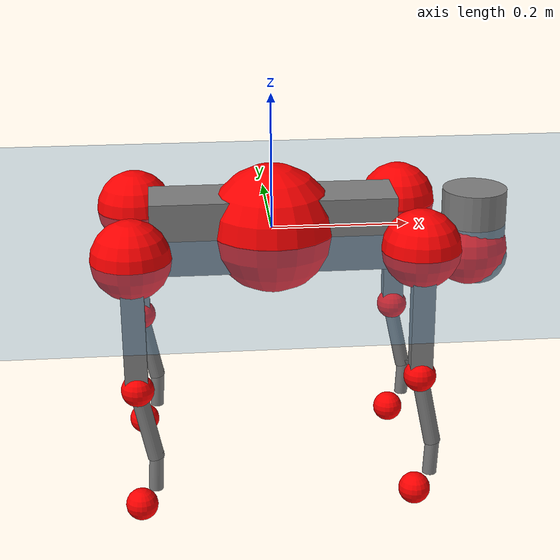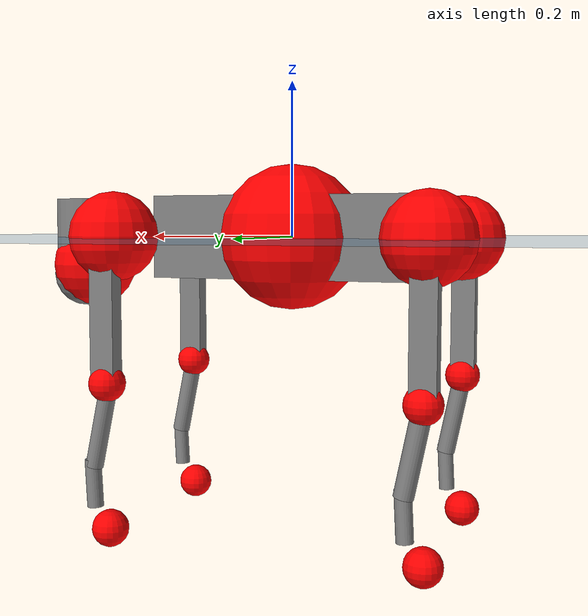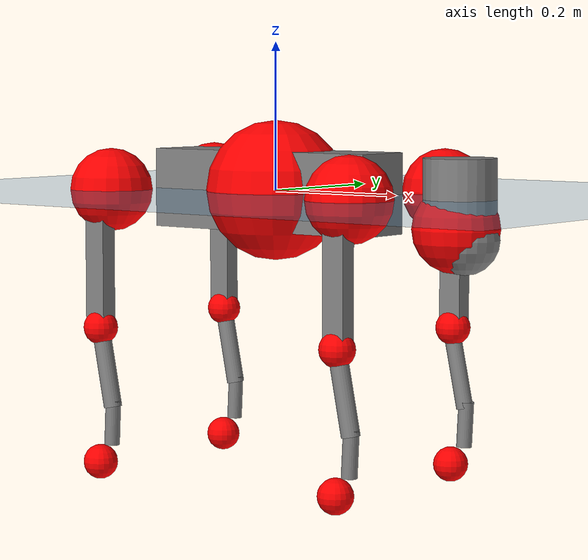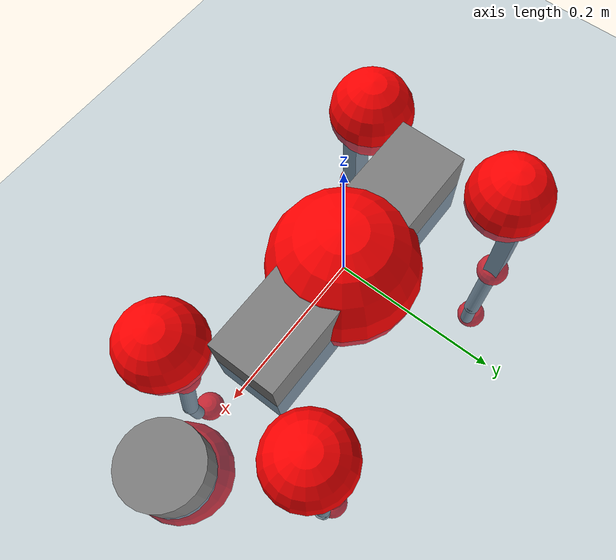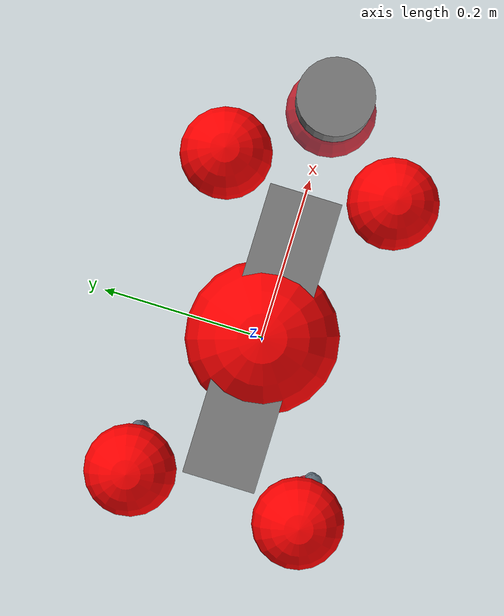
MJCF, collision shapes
<mujoco model="go2">
  <compiler angle="radian" assetdir="assets" balanceinertia="true" inertiafromgeom="false"/>

  <option timestep="0.005" density="1.2" viscosity="2e-05"/>

  <size nkey="1"/>

  <visual>
    <quality shadowsize="8192"/>
    <map shadowclip="0.5"/>
  </visual>

  <default>
    <default class="/">
      <geom contype="0" conaffinity="0" group="1" solref="-1000 -80"/>
      <site size="0.01 0.005 0.005" group="5"/>
      <general forcelimited="true" biastype="affine" gainprm="20" biasprm="0 -20 -0.5"/>
      <default class="go2">
        <joint armature="0.01" damping="0.01" frictionloss="0.2"/>
        <geom condim="1" margin="0.001"/>
        <default class="visual">
          <geom type="mesh" group="2"/>
        </default>
        <default class="collision">
          <geom group="3"/>
          <default class="foot">
            <geom size="0.022 0 0" condim="6" priority="1" friction="0.8 0.02 0.01" solimp="0.015 1 0.022"/>
          </default>
        </default>
        <default class="reward_collision_sphere">
          <geom group="5" rgba="1 0 0 1"/>
        </default>
      </default>
    </default>
  </default>

  <asset>
    <texture type="skybox" colorspace="auto" name="//unnamed_texture_0" builtin="gradient" rgb1="0.95 0.95 0.95" rgb2="0.95 0.95 0.95" width="100" height="600"/>
    <texture type="2d" colorspace="auto" name="texplane" builtin="checker" rgb1="0.345 0.575 0.748" rgb2="0.345 0.575 0.748" markrgb="1 1 1" width="512" height="512"/>
    <material name="MatPlane" class="/" texture="texplane" texuniform="true" texrepeat="2 2" specular="0.9"/>
    <material name="metal" class="/" rgba="0.9 0.95 0.95 1"/>
    <material name="black" class="/" rgba="0 0 0 1"/>
    <material name="white" class="/"/>
    <material name="gray" class="/" rgba="0.671705 0.692426 0.77427 1"/>
    <mesh name="base_0" class="/" file="base_0.obj"/>
    <mesh name="base_1" class="/" file="base_1.obj"/>
    <mesh name="base_2" class="/" file="base_2.obj"/>
    <mesh name="base_3" class="/" file="base_3.obj"/>
    <mesh name="base_4" class="/" file="base_4.obj"/>
    <mesh name="hip_0" class="/" file="hip_0.obj"/>
    <mesh name="hip_1" class="/" file="hip_1.obj"/>
    <mesh name="thigh_0" class="/" file="thigh_0.obj"/>
    <mesh name="thigh_1" class="/" file="thigh_1.obj"/>
    <mesh name="thigh_mirror_0" class="/" file="thigh_mirror_0.obj"/>
    <mesh name="thigh_mirror_1" class="/" file="thigh_mirror_1.obj"/>
    <mesh name="calf_0" class="/" file="calf_0.obj"/>
    <mesh name="calf_1" class="/" file="calf_1.obj"/>
    <mesh name="calf_mirror_0" class="/" file="calf_mirror_0.obj"/>
    <mesh name="calf_mirror_1" class="/" file="calf_mirror_1.obj"/>
    <mesh name="foot" class="/" file="foot.obj"/>
  </asset>

  <worldbody>
    <geom name="floor" class="/" size="100 100 0.125" type="plane" group="0" material="MatPlane"/>
    <light name="toplight_shadow" class="/" pos="0 0 5" dir="0.0990148 0.0990148 -0.990148" type="directional" ambient="0.04 0.04 0.04" diffuse="0.55 0.55 0.55" specular="0.12 0.12 0.12"/>
    <light name="toplight_fill" class="/" pos="0 0 5" dir="0.0990148 0.0990148 -0.990148" type="directional" castshadow="false" ambient="0.04 0.04 0.04" diffuse="0.3 0.3 0.3" specular="0.08 0.08 0.08"/>
    <body name="trunk" childclass="go2" pos="0.000344336 -0.000497253 0.000243769" quat="1 2.45086e-05 -0.000190823 -2.64921e-05">
      <inertial pos="0.0219328 -4.62631e-05 -0.00491762" quat="0.0034875 0.715066 -0.00226868 0.699044" mass="5.79793" diaginertia="0.135348 0.0628022 0.0127209"/>
      <joint name="//unnamed_joint_0" type="free" armature="0" damping="0" frictionloss="0"/>
      <geom name="//unnamed_geom_1" class="visual" material="black" mesh="base_0"/>
      <geom name="//unnamed_geom_2" class="visual" material="black" mesh="base_1"/>
      <geom name="//unnamed_geom_3" class="visual" material="black" mesh="base_2"/>
      <geom name="//unnamed_geom_4" class="visual" material="white" mesh="base_3"/>
      <geom name="//unnamed_geom_5" class="visual" material="gray" mesh="base_4"/>
      <geom name="trunk_1" class="collision" size="0.178124 0.0442705 0.0539769" type="box"/>
      <geom name="trunk_2" class="collision" size="0.0473482 0.0426134" pos="0.298549 0 0.00876836" type="cylinder"/>
      <geom name="trunk_3" class="collision" size="0.0445073" pos="0.306929 0 -0.0526101"/>
      <geom name="//unnamed_geom_9" class="reward_collision_sphere" size="0.0946963"/>
      <geom name="//unnamed_geom_10" class="reward_collision_sphere" size="0.0568178" pos="0.293311 0 -0.0394576"/>
      <site name="imu" pos="-0.0256897 -0.00167874 0.0323274" size="0.00946963"/>
      <camera name="track" pos="0 -1.83303 0" quat="0.707107 0.707107 0 0" mode="trackcom"/>
      <camera name="ego_camera" pos="0.326832 0 0.0394576" quat="-0.5 -0.5 0.5 0.5"/>
      <body name="FL_hip" pos="0.202114 0.0435404 0.00126669" quat="1 4.63009e-05 1.23831e-05 -4.41026e-05">
        <inertial pos="-0.00611509 0.00246626 -0.000259095" quat="0.496975 0.499295 0.505451 0.498236" mass="0.57397" diaginertia="0.00111142 0.000389598 0.000248831"/>
        <joint name="FL_hip_joint" pos="0 0 0" axis="0.999929 0.011597 -0.00278667" range="-1.04371 1.04954" armature="0.00902896" damping="0.0070999" frictionloss="0.181222"/>
        <geom name="//unnamed_geom_11" class="visual" material="metal" mesh="hip_0"/>
        <geom name="//unnamed_geom_12" class="visual" material="gray" mesh="hip_1"/>
        <geom name="//unnamed_geom_13" class="collision" size="0.0435603 0.0189393" pos="0 0.0733211 0" quat="0.707107 0.707107 0 0" type="cylinder"/>
        <geom name="//unnamed_geom_14" class="reward_collision_sphere" size="0.0568178" pos="0 0.064156 0"/>
        <body name="FL_thigh" pos="0.000310399 0.0879377 0.00123464" quat="1 -0.000436577 -0.000126172 9.06649e-05">
          <inertial pos="-0.00408705 -0.0202828 -0.0296259" quat="0.828625 0.0882162 -0.0182567 0.552509" mass="0.976999" diaginertia="0.00751534 0.00378961 0.000457281"/>
          <joint name="FL_thigh_joint" pos="0 0 0" axis="0.0014506 0.999996 -0.0026206" stiffness="0.00062109" range="-1.58233 3.49322" armature="0.00941739" damping="0.0102247" frictionloss="0.198285"/>
          <geom name="//unnamed_geom_15" class="visual" material="metal" mesh="thigh_0"/>
          <geom name="//unnamed_geom_16" class="visual" material="gray" mesh="thigh_1"/>
          <geom name="//unnamed_geom_17" class="collision" size="0.100852 0.0116003 0.0160984" pos="0 0 -0.093383" quat="0.707107 0 0.707107 0" type="box"/>
          <body name="FL_calf" pos="-0.000421504 -0.00149161 -0.186851" quat="1 -1.14409e-05 0.000362761 3.36157e-05">
            <inertial pos="0.00585464 -0.00101226 -0.123226" quat="0.709818 0.00460639 -0.00321522 0.704362" mass="0.200248" diaginertia="0.00186866 0.000935297 2.72284e-05"/>
            <joint name="FL_calf_joint" pos="0 0 0" axis="-0.00582088 0.999982 0.00147198" stiffness="0.00210269" range="-2.72724 -0.84494" armature="0.00953479" damping="0.00698209" frictionloss="0.189205"/>
            <geom name="//unnamed_geom_18" class="visual" material="gray" mesh="calf_0"/>
            <geom name="//unnamed_geom_19" class="visual" material="black" mesh="calf_1"/>
            <geom name="FL_calf0" class="collision" size="0.0113636 0.0568178" pos="0.00838032 0 -0.0526101" quat="0.994493 0 -0.104807 0" type="cylinder"/>
            <geom name="//unnamed_geom_21" class="collision" size="0.0104166 0.0307763" pos="0.0209508 0 -0.129772" quat="0.999688 0 0.0249974 0" type="cylinder"/>
            <geom name="//unnamed_geom_22" class="visual" pos="0 0 -0.186766" quat="1 0 0 0" material="black" mesh="foot"/>
            <geom name="FL_foot" class="foot" size="0.017024" pos="-0.00209508 0 -0.186766"/>
            <geom name="//unnamed_geom_24" class="reward_collision_sphere" size="0.0236741"/>
            <geom name="//unnamed_geom_25" class="reward_collision_sphere" size="0.0236741" pos="-0.00209508 0 -0.186766"/>
            <site name="FL_foot" class="foot" pos="-0.00209508 0 -0.186766" size="0.00946963"/>
          </body>
        </body>
      </body>
      <body name="FR_hip" pos="0.202382 -0.0407689 -0.000357252" quat="1 -0.000106726 -7.21788e-05 -4.67642e-05">
        <inertial pos="-0.00429597 -0.00153914 -0.00165688" quat="0.501215 0.503957 0.496443 0.498352" mass="0.58462" diaginertia="0.00113134 0.00039353 0.000251325"/>
        <joint name="FR_hip_joint" pos="0 0 0" axis="0.999999 0.00113518 -0.000351647" stiffness="0.00667162" range="-1.06301 1.04902" armature="0.00946775" damping="0.0136515" frictionloss="0.18997"/>
        <geom name="//unnamed_geom_26" class="visual" pos="0 3.45664e-10 1.48262e-08" quat="4.63268e-05 1 0 0" material="metal" mesh="hip_0"/>
        <geom name="//unnamed_geom_27" class="visual" pos="0 5.60362e-10 -3.66709e-08" quat="4.63268e-05 1 0 0" material="gray" mesh="hip_1"/>
        <geom name="//unnamed_geom_28" class="collision" size="0.0435603 0.0189393" pos="0 -0.0733211 0" quat="0.707107 0.707107 0 0" type="cylinder"/>
        <geom name="//unnamed_geom_29" class="reward_collision_sphere" size="0.0568178" pos="0 -0.064156 0"/>
        <body name="FR_thigh" pos="0.000127907 -0.0873047 -0.000362275" quat="1 7.33435e-06 -1.38074e-05 -2.80447e-05">
          <inertial pos="-0.00286308 0.0220361 -0.0284516" quat="0.551506 -0.0200534 0.0850637 0.82958" mass="0.97613" diaginertia="0.00745444 0.00379239 0.000454224"/>
          <joint name="FR_thigh_joint" pos="0 0 0" axis="-0.00562366 -0.999984 0.00108979" range="-3.49651 1.55217" armature="0.00937708" damping="0.0132798" frictionloss="0.19441"/>
          <geom name="//unnamed_geom_30" class="visual" material="metal" mesh="thigh_mirror_0"/>
          <geom name="//unnamed_geom_31" class="visual" material="gray" mesh="thigh_mirror_1"/>
          <geom name="//unnamed_geom_32" class="collision" size="0.100852 0.0116003 0.0160984" pos="0 0 -0.093383" quat="0.707107 0 0.707107 0" type="box"/>
          <body name="FR_calf" pos="-0.000413569 -0.000690543 -0.18656" quat="1 8.24655e-05 2.60804e-05 -0.0005353">
            <inertial pos="0.00812866 0.00152624 -0.12443" quat="0.703313 -0.00507407 0.00400658 0.710851" mass="0.203931" diaginertia="0.00184836 0.000942661 2.77741e-05"/>
            <joint name="FR_calf_joint" pos="0 0 0" axis="-0.000569359 -1 0.000129221" range="0.81854 2.72709" armature="0.00963425" damping="0.0114463" frictionloss="0.191698"/>
            <geom name="//unnamed_geom_33" class="visual" material="gray" mesh="calf_mirror_0"/>
            <geom name="//unnamed_geom_34" class="visual" material="black" mesh="calf_mirror_1"/>
            <geom name="FR_calf0" class="collision" size="0.0123105 0.0568178" pos="0.0104754 0 -0.0526101" quat="0.995004 0 -0.0998334 0" type="cylinder"/>
            <geom name="//unnamed_geom_36" class="collision" size="0.0104166 0.0307763" pos="0.0209508 0 -0.129772" quat="0.999688 0 0.0249974 0" type="cylinder"/>
            <geom name="//unnamed_geom_37" class="visual" pos="0 0 -0.186766" quat="1 0 0 0" material="black" mesh="foot"/>
            <geom name="FR_foot" class="foot" size="0.0220103" pos="-0.00209508 0 -0.186766"/>
            <geom name="//unnamed_geom_39" class="reward_collision_sphere" size="0.0236741"/>
            <geom name="//unnamed_geom_40" class="reward_collision_sphere" size="0.0236741" pos="-0.00209508 0 -0.186766"/>
            <site name="FR_foot" class="foot" pos="-0.00209508 0 -0.186766" size="0.00946963"/>
          </body>
        </body>
      </body>
      <body name="RL_hip" pos="-0.201155 0.0428974 0.000547546" quat="1 4.76601e-05 5.51652e-05 0.000347305">
        <inertial pos="0.00639852 0.000862941 0.000141402" quat="0.505003 0.498067 0.496956 0.499936" mass="0.581952" diaginertia="0.00111151 0.000385717 0.000248537"/>
        <joint name="RL_hip_joint" pos="0 0 0" axis="-0.999756 -0.0203895 -0.00849115" range="-1.06235 1.03992" armature="0.0094505" damping="0.0120812" frictionloss="0.191578"/>
        <geom name="//unnamed_geom_41" class="visual" pos="-1.4871e-09 0 -2.91507e-07" quat="4.63268e-05 0 1 0" material="metal" mesh="hip_0"/>
        <geom name="//unnamed_geom_42" class="visual" pos="-2.41077e-09 0 -2.58525e-07" quat="4.63268e-05 0 1 0" material="gray" mesh="hip_1"/>
        <geom name="//unnamed_geom_43" class="collision" size="0.0435603 0.0189393" pos="0 0.0733211 0" quat="0.707107 0.707107 0 0" type="cylinder"/>
        <geom name="//unnamed_geom_44" class="reward_collision_sphere" size="0.0568178" pos="0 0.064156 0"/>
        <body name="RL_thigh" pos="-0.00109824 0.0861812 0.00108129" quat="1 0.00011172 8.53825e-05 -0.00016369">
          <inertial pos="-0.00332774 -0.0192435 -0.0290871" quat="0.829193 0.0858367 -0.0184817 0.552023" mass="0.976564" diaginertia="0.00751858 0.00373393 0.000444715"/>
          <joint name="RL_thigh_joint" pos="0 0 0" axis="-0.00235988 0.999997 -0.000637655" range="-0.53792 4.51897" armature="0.00976137" damping="0.00796109" frictionloss="0.189501"/>
          <geom name="//unnamed_geom_45" class="visual" material="metal" mesh="thigh_0"/>
          <geom name="//unnamed_geom_46" class="visual" material="gray" mesh="thigh_1"/>
          <geom name="//unnamed_geom_47" class="collision" size="0.100852 0.0116003 0.0160984" pos="0 0 -0.093383" quat="0.707107 0 0.707107 0" type="box"/>
          <body name="RL_calf" pos="0.000867258 -0.00081346 -0.18787" quat="1 0.000407327 -0.000327306 -0.000140876">
            <inertial pos="0.00649231 -0.000565713 -0.122351" quat="0.713043 0.00188129 -0.00774968 0.701075" mass="0.203932" diaginertia="0.00188405 0.000957046 2.75538e-05"/>
            <joint name="RL_calf_joint" pos="0 0 0" axis="0.00237102 0.999997 9.8848e-05" stiffness="0.00468397" range="-2.7117 -0.820908" armature="0.00969526" damping="0" frictionloss="0.192903"/>
            <geom name="//unnamed_geom_48" class="visual" material="gray" mesh="calf_0"/>
            <geom name="//unnamed_geom_49" class="visual" material="black" mesh="calf_1"/>
            <geom name="RL_calf0" class="collision" size="0.0123105 0.0568178" pos="0.0104754 0 -0.0526101" quat="0.995004 0 -0.0998334 0" type="cylinder"/>
            <geom name="//unnamed_geom_51" class="collision" size="0.0104166 0.0307763" pos="0.0209508 0 -0.129772" quat="0.999688 0 0.0249974 0" type="cylinder"/>
            <geom name="//unnamed_geom_52" class="visual" pos="0 0 -0.186766" quat="1 0 0 0" material="black" mesh="foot"/>
            <geom name="RL_foot" class="foot" size="0.0181507" pos="-0.00209508 0 -0.186766"/>
            <geom name="//unnamed_geom_54" class="reward_collision_sphere" size="0.0236741"/>
            <geom name="//unnamed_geom_55" class="reward_collision_sphere" size="0.0236741" pos="-0.00209508 0 -0.186766"/>
            <site name="RL_foot" class="foot" pos="-0.00209508 0 -0.186766" size="0.00946963"/>
          </body>
        </body>
      </body>
      <body name="RR_hip" pos="-0.203733 -0.0433309 -0.0014822" quat="1 0.00010847 9.99235e-05 -4.12031e-05">
        <inertial pos="0.00482425 -0.00261843 0.000269308" quat="0.50073 0.498079 0.499546 0.501638" mass="0.571436" diaginertia="0.00109491 0.000378982 0.000244421"/>
        <joint name="RR_hip_joint" pos="0 0 0" axis="-0.99998 0.00495272 -0.00383356" stiffness="0.000377368" range="-1.04419 1.04713" armature="0.00952318" damping="0.00231165" frictionloss="0.190309"/>
        <geom name="//unnamed_geom_56" class="visual" pos="1.48257e-09 3.45664e-10 -3.06333e-07" quat="2.14617e-09 4.63268e-05 4.63268e-05 -1" material="metal" mesh="hip_0"/>
        <geom name="//unnamed_geom_57" class="visual" pos="2.42199e-09 5.60362e-10 -2.21854e-07" quat="2.14617e-09 4.63268e-05 4.63268e-05 -1" material="gray" mesh="hip_1"/>
        <geom name="//unnamed_geom_58" class="collision" size="0.0435603 0.0189393" pos="0 -0.0733211 0" quat="0.707107 0.707107 0 0" type="cylinder"/>
        <geom name="//unnamed_geom_59" class="reward_collision_sphere" size="0.0568178" pos="0 -0.064156 0"/>
        <body name="RR_thigh" pos="0.000189088 -0.0878632 -0.000777528" quat="1 4.69357e-05 -9.22549e-05 -0.000114911">
          <inertial pos="-0.00329539 0.0207499 -0.0286696" quat="0.55347 -0.0250684 0.0810125 0.828541" mass="0.976214" diaginertia="0.00755161 0.00378336 0.000464483"/>
          <joint name="RR_thigh_joint" pos="0 0 0" axis="0.00137103 -0.999999 0.000414395" stiffness="0.000493507" range="-4.53674 0.51868" armature="0.00945795" damping="0.01502" frictionloss="0.197797"/>
          <geom name="//unnamed_geom_60" class="visual" material="metal" mesh="thigh_mirror_0"/>
          <geom name="//unnamed_geom_61" class="visual" material="gray" mesh="thigh_mirror_1"/>
          <geom name="//unnamed_geom_62" class="collision" size="0.100852 0.0116003 0.0160984" pos="0 0 -0.093383" quat="0.707107 0 0.707107 0" type="box"/>
          <body name="RR_calf" pos="0.000960157 -0.000893477 -0.187597" quat="1 1.29351e-05 -2.45944e-05 -4.80537e-05">
            <inertial pos="0.00613235 -0.000489188 -0.123352" quat="0.702765 -0.00467486 0.00265159 0.711401" mass="0.204984" diaginertia="0.00189863 0.000948129 2.75113e-05"/>
            <joint name="RR_calf_joint" pos="0 0 0" axis="0.00276982 -0.999993 0.00245543" range="0.842584 2.74242" armature="0.00951241" damping="0.00978941" frictionloss="0.19759"/>
            <geom name="//unnamed_geom_63" class="visual" material="gray" mesh="calf_mirror_0"/>
            <geom name="//unnamed_geom_64" class="visual" material="black" mesh="calf_mirror_1"/>
            <geom name="RR_calf0" class="collision" size="0.0123105 0.0568178" pos="0.0104754 0 -0.0526101" quat="0.995004 0 -0.0998334 0" type="cylinder"/>
            <geom name="//unnamed_geom_66" class="collision" size="0.0104166 0.0307763" pos="0.0209508 0 -0.129772" quat="0.999688 0 0.0249974 0" type="cylinder"/>
            <geom name="//unnamed_geom_67" class="visual" pos="0 0 -0.186766" quat="1 0 0 0" material="black" mesh="foot"/>
            <geom name="RR_foot" class="foot" size="0.0220869" pos="-0.00209508 0 -0.186766"/>
            <geom name="//unnamed_geom_69" class="reward_collision_sphere" size="0.0236741"/>
            <geom name="//unnamed_geom_70" class="reward_collision_sphere" size="0.0236741" pos="-0.00209508 0 -0.186766"/>
            <site name="RR_foot" class="foot" pos="-0.00209508 0 -0.186766" size="0.00946963"/>
          </body>
        </body>
      </body>
    </body>
  </worldbody>

  <contact>
    <pair class="/" geom1="floor" geom2="FL_foot" name="//unnamed_contact_0"/>
    <pair class="/" geom1="floor" geom2="FR_foot" name="//unnamed_contact_1"/>
    <pair class="/" geom1="floor" geom2="RL_foot" name="//unnamed_contact_2"/>
    <pair class="/" geom1="floor" geom2="RR_foot" name="//unnamed_contact_3"/>
  </contact>

  <actuator>
    <general name="FL_hip" class="/" joint="FL_hip_joint" forcerange="-22.3781 22.3781" gainprm="18.9558" biasprm="0 -18.9558 -0.477077"/>
    <general name="FL_thigh" class="/" joint="FL_thigh_joint" forcerange="-22.4759 22.4759" gainprm="18.9558" biasprm="0 -18.9558 -0.477077"/>
    <general name="FL_calf" class="/" joint="FL_calf_joint" forcerange="-41.4159 41.4159" gainprm="18.9558" biasprm="0 -18.9558 -0.477077"/>
    <general name="FR_hip" class="/" joint="FR_hip_joint" forcerange="-22.3251 22.3251" gainprm="18.9558" biasprm="0 -18.9558 -0.477077"/>
    <general name="FR_thigh" class="/" joint="FR_thigh_joint" forcerange="-22.4786 22.4786" gainprm="18.9558" biasprm="0 -18.9558 -0.477077"/>
    <general name="FR_calf" class="/" joint="FR_calf_joint" forcerange="-41.7215 41.7215" gainprm="18.9558" biasprm="0 -18.9558 -0.477077"/>
    <general name="RL_hip" class="/" joint="RL_hip_joint" forcerange="-22.4468 22.4468" gainprm="18.9558" biasprm="0 -18.9558 -0.477077"/>
    <general name="RL_thigh" class="/" joint="RL_thigh_joint" forcerange="-21.7737 21.7737" gainprm="18.9558" biasprm="0 -18.9558 -0.477077"/>
    <general name="RL_calf" class="/" joint="RL_calf_joint" forcerange="-44.326 44.326" gainprm="18.9558" biasprm="0 -18.9558 -0.477077"/>
    <general name="RR_hip" class="/" joint="RR_hip_joint" forcerange="-22.73 22.73" gainprm="18.9558" biasprm="0 -18.9558 -0.477077"/>
    <general name="RR_thigh" class="/" joint="RR_thigh_joint" forcerange="-22.485 22.485" gainprm="18.9558" biasprm="0 -18.9558 -0.477077"/>
    <general name="RR_calf" class="/" joint="RR_calf_joint" forcerange="-41.0096 41.0096" gainprm="18.9558" biasprm="0 -18.9558 -0.477077"/>
  </actuator>

  <sensor>
    <gyro site="imu" name="imu_angular_velocity"/>
    <velocimeter site="imu" name="imu_linear_velocity"/>
    <framelinvel objtype="site" objname="FL_foot" name="FL_foot_global_linear_velocity"/>
    <framelinvel objtype="site" objname="FR_foot" name="FR_foot_global_linear_velocity"/>
    <framelinvel objtype="site" objname="RL_foot" name="RL_foot_global_linear_velocity"/>
    <framelinvel objtype="site" objname="RR_foot" name="RR_foot_global_linear_velocity"/>
  </sensor>

  <keyframe>
    <key name="home" qpos="0 0 0.325 1 0 0 0 0.1 0.8 -1.5 -0.1 -0.8 1.5 -0.1 0.8 -1.5 0.1 -0.8 1.5"/>
  </keyframe>
</mujoco>
